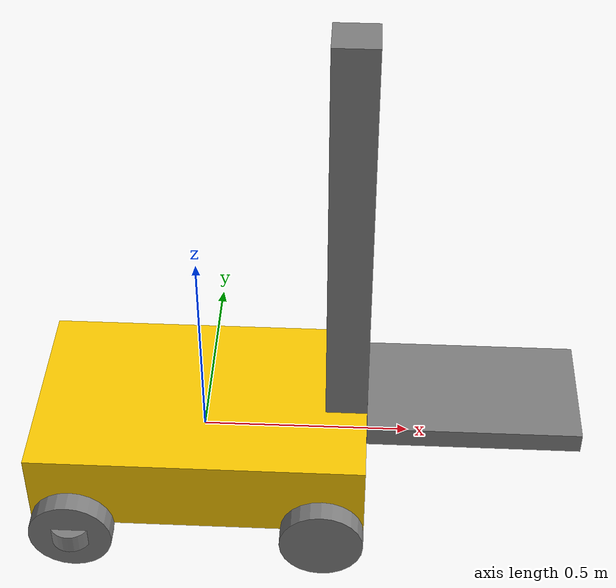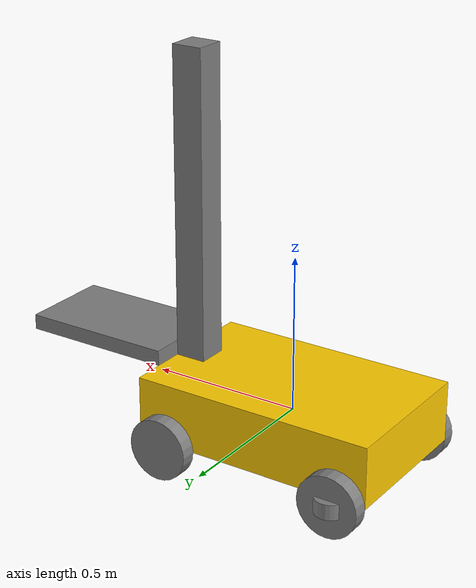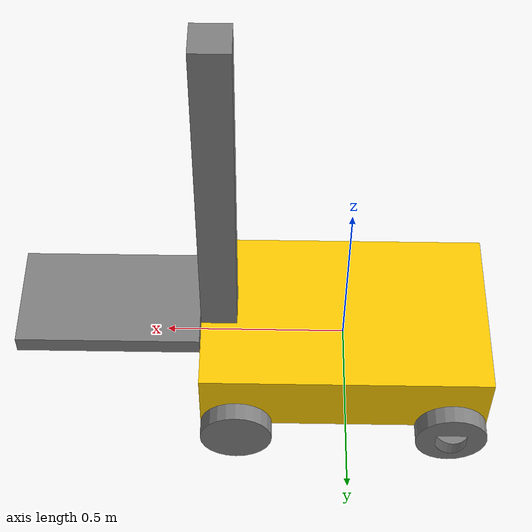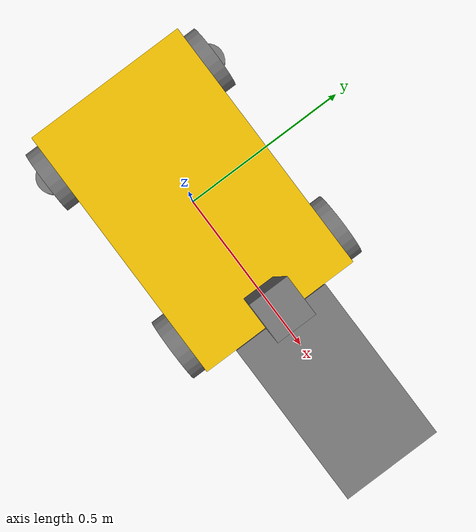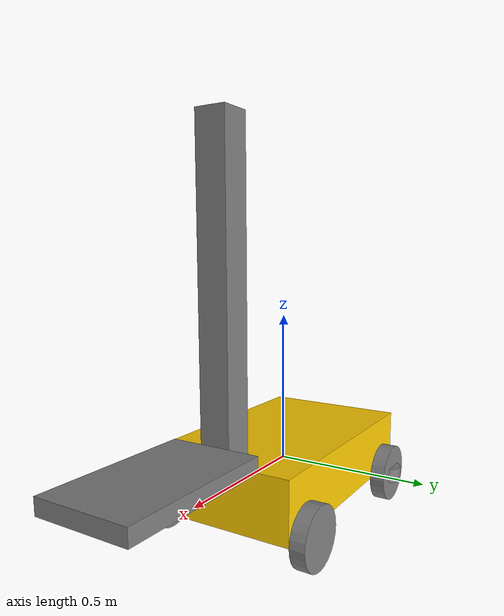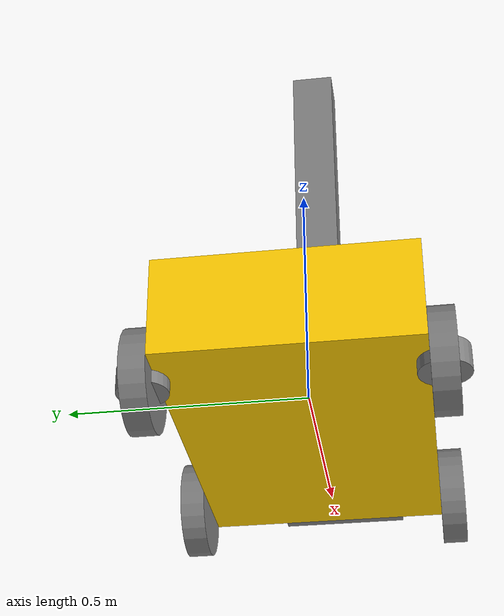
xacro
<?xml version="1.0"?>
<robot xmlns:xacro="http://www.ros.org/wiki/xacro">

  <!-- Define colors -->
  <material name="yellow">
    <color rgba="1 0.8 0 1"/>
  </material>
  <material name="gray">
    <color rgba="0.5 0.5 0.5 1"/>
  </material>

  <!-- Base link -->
  <link name="base_link">
    <visual>
      <geometry>
        <box size="0.8 0.5 0.2"/>
      </geometry>
      <material name="yellow"/>
    </visual>
    <collision>
      <geometry>
        <box size="0.8 0.5 0.2"/>
      </geometry>
    </collision>
  </link>

  <!-- Front wheels (connected by single motor) -->
  <xacro:macro name="front_wheel" params="prefix y">
    <link name="${prefix}_wheel">
      <visual>
        <geometry>
          <cylinder radius="0.1" length="0.05"/>
        </geometry>
        <material name="gray"/>
      </visual>
      <collision>
        <geometry>
          <cylinder radius="0.1" length="0.05"/>
        </geometry>
      </collision>
    </link>
    <joint name="${prefix}_wheel_joint" type="continuous">
      <parent link="base_link"/>
      <child link="${prefix}_wheel"/>
      <origin xyz="0.3 ${y} -0.1" rpy="${pi/2} 0 0"/>
      <axis xyz="0 0 1"/>
    </joint>
  </xacro:macro>

  <xacro:front_wheel prefix="front_right" y="-0.275"/>
  <xacro:front_wheel prefix="front_left" y="0.275"/>

  <!-- Rear wheels with independent steering -->
  <xacro:macro name="rear_wheel_steering" params="prefix y">
    <link name="${prefix}_steering_link">
      <visual>
        <geometry>
          <cylinder radius="0.05" length="0.05"/>
        </geometry>
        <material name="gray"/>
      </visual>
    </link>
    <joint name="${prefix}_steering_joint" type="revolute">
      <parent link="base_link"/>
      <child link="${prefix}_steering_link"/>
      <origin xyz="-0.3 ${y} -0.1" rpy="0 0 0"/>
      <axis xyz="0 0 1"/>
      <limit lower="-0.5" upper="0.5" effort="1000" velocity="1.0"/>
    </joint>

    <link name="${prefix}_wheel">
      <visual>
        <geometry>
          <cylinder radius="0.1" length="0.05"/>
        </geometry>
        <material name="gray"/>
      </visual>
      <collision>
        <geometry>
          <cylinder radius="0.1" length="0.05"/>
        </geometry>
      </collision>
    </link>
    <joint name="${prefix}_wheel_joint" type="continuous">
      <parent link="${prefix}_steering_link"/>
      <child link="${prefix}_wheel"/>
      <origin xyz="0 0 0" rpy="${pi/2} 0 0"/>
      <axis xyz="0 0 1"/>
    </joint>
  </xacro:macro>

  <xacro:rear_wheel_steering prefix="rear_right" y="-0.275"/>
  <xacro:rear_wheel_steering prefix="rear_left" y="0.275"/>

  <!-- Mast and Fork (unchanged) -->
  <!-- ... (keep the mast and fork parts as they were in the previous version) ... -->

  <!-- Mast -->
  <link name="mast">
    <visual>
      <geometry>
        <box size="0.1 0.1 1.0"/>
      </geometry>
      <material name="gray"/>
    </visual>
    <collision>
      <geometry>
        <box size="0.1 0.1 1.0"/>
      </geometry>
    </collision>
  </link>
  <joint name="mast_joint" type="fixed">
    <parent link="base_link"/>
    <child link="mast"/>
    <origin xyz="0.35 0 0.6" rpy="0 0 0"/>
  </joint>

  <!-- Fork -->
  <link name="fork">
    <visual>
      <geometry>
        <box size="0.5 0.3 0.05"/>
      </geometry>
      <material name="gray"/>
    </visual>
    <collision>
      <geometry>
        <box size="0.5 0.3 0.05"/>
      </geometry>
    </collision>
  </link>
  <joint name="fork_joint" type="prismatic">
    <parent link="mast"/>
    <child link="fork"/>
    <origin xyz="0.3 0 -0.475" rpy="0 0 0"/>
    <axis xyz="0 0 1"/>
    <limit lower="0" upper="0.5" effort="1000" velocity="0.5"/>
  </joint>

</robot>
